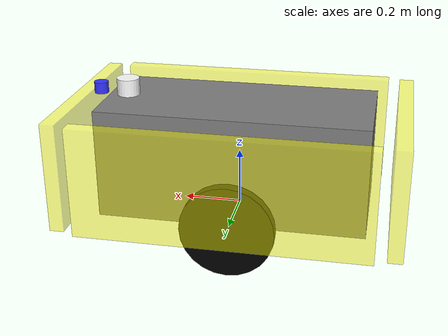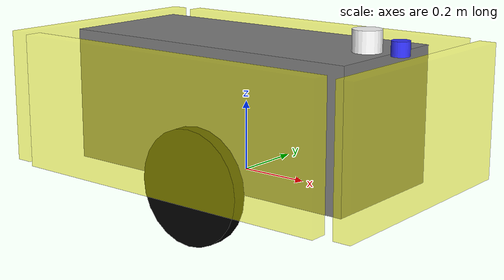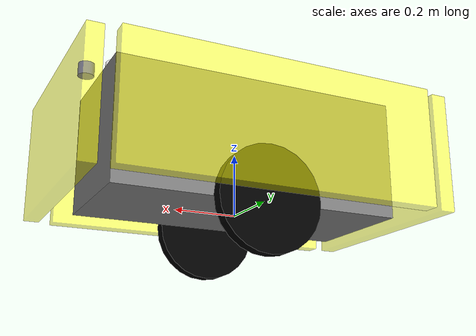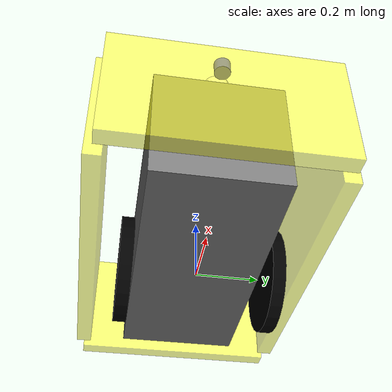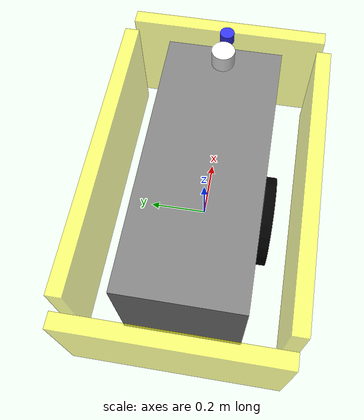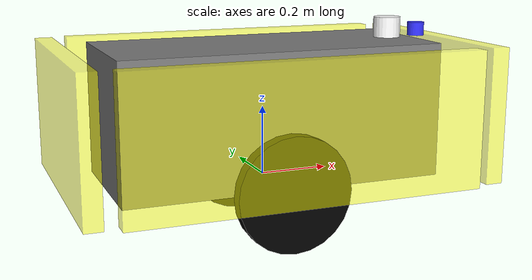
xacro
<?xml version="1.0"?>
<robot xmlns:xacro="http://www.ros.org/wiki/xacro"  name="robot">

    <xacro:include filename ="robot_core.xacro"/>
    <xacro:include filename="gazebo_control.xacro"/>
    <xacro:include filename="lidar.xacro"/>
</robot>

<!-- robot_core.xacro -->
<robot xmlns:xacro="http://www.ros.org//wiki/xacro">
    <xacro:include filename="inertial_macros.xacro"/>
    <material name ="white">
        <color rgba ="1 1 1 1"/>
    </material>

    <material name ="orange">
        <color rgba ="0.49 0.49 0.49 1"/>
    </material>
    <material name ="yellow">
        <color rgba ="1 1 0 0.5"/>
    </material>
    <material name ="blue">
        <color rgba ="0.2 0.2 1 1"/>
    </material>

    <material name ="black">
        <color rgba ="0 0 0 1"/>
    </material>

    <material name ="red">
        <color rgba ="1 0 0 1"/>
    </material>

    <xacro:property name="chassis_length" value="0.93"/>
    <xacro:property name="chassis_width" value="0.40"/>
    <xacro:property name="chassis_height" value="0.385"/>
    <xacro:property name="chassis_mass" value="10.0"/>
    <xacro:property name="wheel_radius" value="0.165"/>
    <xacro:property name="wheel_thickness" value="0.04"/>
    <xacro:property name="wheel_mass" value="1.0"/>
    <xacro:property name="wheel_offset_x" value="0.46"/>
    <xacro:property name="caster_wheel_radius" value="0.04"/>
    <xacro:property name="caster_wheel_mass" value="0.1"/>
    <xacro:property name="caster_wheel_offset_x" value="0.37"/>
    <xacro:property name="support_radius" value="0.04"/>
    <xacro:property name="support_length" value="0.25"/>
    <xacro:property name="support_x" value="0.04"/>
    <xacro:property name="support_mass" value="0.2"/>
    <xacro:property name="friction_coefficient_castor" value="0.0001"/>
    <xacro:property name="caster_wheel_z" value="${support_length/2}"/>

    <!-- BASE_FOOTPRINT LINK -->

    <joint name="base_footprint_joint" type="fixed">
        <parent link="base_link"/>
        <child link="base_footprint"/>
        <origin xyz="0 0 0" rpy="0 0 0"/>
    </joint>

    <link name="base_footprint">
    </link>

        <!-- BASE LINK -->
    <link name ="base_link">
    </link>
        <!-- CHASSIS LINK -->
    <joint name ="chassis_joint" type="fixed">
          <parent link="base_link"/>
          <child link="chassis"/>
          <origin xyz ="0 0 0"/>
    </joint>

    <link name ="chassis">
        <visual>
            <origin xyz ="0 0 ${chassis_height/2}"/>
            <geometry>
                <box size ="${chassis_length} ${chassis_width} ${chassis_height}"/>
            </geometry>
            <material name ="orange"/>
        </visual>
        <collision>
            <origin xyz ="0 0 ${chassis_height/2}"/>
            <geometry>
                <box size ="${chassis_length} ${chassis_width} ${chassis_height}"/>
            </geometry>
        </collision>
        <xacro:inertial_box mass="${chassis_mass}" x="${chassis_length}" y="${chassis_width}" z="${chassis_height}">
            <origin xyz="0 0 ${chassis_height}" rpy ="0 0 0"/>
        </xacro:inertial_box>
    </link>
    <gazebo reference ="chassis">
        <material> Gazebo/Grey</material>
    </gazebo>

            <!-- front Bumper -->
    <joint name="front_bumper_joint" type="fixed">
        <parent link="chassis"/>
        <child link="front_bumper"/>
        <origin xyz="${chassis_length/2 + 0.20/2} 0 0"/>
    </joint>

    <link name="front_bumper">

        <visual>
            <origin xyz ="0 0 0.1925"/>
            <geometry>
                <box size="0.05
                        0.69
                        0.385"/>
            </geometry>
            <material name="yellow"/>
        </visual>

        <collision>
            <origin xyz ="0 0 0.1925"/>
            <geometry>
                <box size="0.05
                        0.69
                        0.385"/>
            </geometry>
        </collision>

    </link>

            <!-- Back Bumper -->
    <joint name="back_bumper_joint" type="fixed">
        <parent link="chassis"/>
        <child link="back_bumper"/>
        <origin xyz="${-chassis_length/2 - 0.20/2} 0 0"/>
    </joint>

    <link name="back_bumper">

        <visual>
            <origin xyz ="0 0 0.1925"/>
            <geometry>
                <box size="0.05
                        0.69
                        0.385"/>
            </geometry>
            <material name="yellow"/>
        </visual>

        <collision>
            <origin xyz ="0 0 0.1925"/>
            <geometry>
                <box size="0.05
                        0.69
                        0.385"/>
            </geometry>
        </collision>

    </link>

            <!-- left Bumper -->
    <joint name="left_bumper_joint" type="fixed">
        <parent link="chassis"/>
        <child link="left_bumper"/>
        <origin xyz="0 ${chassis_width/2 + 0.29/2} 0"/>
    </joint>

    <link name="left_bumper">

        <visual>
            <origin xyz ="0 0 0.1925"/>
            <geometry>
                <box size="1
                        0.05
                        0.385"/>
            </geometry>
            <material name="yellow"/>
        </visual>

        <collision>
            <origin xyz ="0 0 0.1925"/>
            <geometry>
                <box size="1
                        0.05
                        0.385"/>
            </geometry>
        </collision>

    </link>

    <!-- RIght Bumper -->
    <joint name="right_bumper_joint" type="fixed">
        <parent link="chassis"/>
        <child link="right_bumper"/>
        <origin xyz="0 ${-chassis_width/2 - 0.29/2} 0"/>
    </joint>

    <link name="right_bumper">

        <visual>
            <origin xyz ="0 0 0.1925"/>
            <geometry>
                <box size="1
                        0.05
                        0.385"/>
            </geometry>
            <material name="yellow"/>
        </visual>

        <collision>
            <origin xyz ="0 0 0.1925"/>
            <geometry>
                <box size="1
                        0.05
                        0.385"/>
            </geometry>
        </collision>

    </link>

            <!-- LEFT WHEEL LINK -->
    <joint name ="left_wheel_joint" type ="continuous">
        <parent link="chassis"/>
        <child link ="left_wheel"/>
        <origin xyz ="0 ${wheel_offset_x/2} 0" rpy="-${pi/2} 0 0"/>
        <axis xyz ="0 0 1"/>
    </joint>

    <link name ="left_wheel">
        <visual>
            <origin xyz ="0 -0.0 0"/>
            <geometry>
                <cylinder radius="${wheel_radius}" length ="${wheel_thickness}"/>   ##
            </geometry>
            <material name ="black"/>
        </visual>
        <collision>
            <origin xyz ="0 -0.165 0"/>
            <geometry>
                <cylinder radius="${wheel_radius}" length ="${wheel_thickness}"/>
            </geometry>
        </collision>
        <xacro:inertial_cylinder mass="${wheel_mass}" length="${wheel_thickness}" radius ="${wheel_radius}">
            <origin xyz ="0 0 0" rpy =" 0 0 0"/>
        </xacro:inertial_cylinder>
    </link>
    <gazebo reference ="left_wheel">
        <material> Gazebo/Black</material>
    </gazebo>

            <!-- RIGHT WHEEL LINK -->
    <joint name ="right_wheel_joint" type ="continuous">
        <parent link="chassis"/>
        <child link ="right_wheel"/>
        <origin xyz ="0 ${-wheel_offset_x/2} 0" rpy="-${pi/2} 0 0"/>
        <axis xyz ="0 0 1"/>
    </joint>

    <link name ="right_wheel">
        <visual>
            <origin xyz ="0 -0.0 0"/>
            <geometry>
                <cylinder radius="${wheel_radius}" length ="${wheel_thickness}"/>
            </geometry>
            <material name ="black"/>
        </visual>
        <collision>
            <origin xyz ="0 -0.165 0"/>
            <geometry>
                <cylinder radius="${wheel_radius}" length ="${wheel_thickness}"/>
            </geometry>
        </collision>
        <xacro:inertial_cylinder mass="${wheel_mass}" length="${wheel_thickness}" radius ="${wheel_radius}">
            <origin xyz ="0 0 0" rpy =" 0 0 0"/>
        </xacro:inertial_cylinder>
    </link>
    <gazebo reference ="right_wheel">
        <material> Gazebo/Black</material>
    </gazebo>

    <!-- GPS SENSOR LINK -->
    <joint name="gps_joint" type="fixed">
        <parent link="chassis"/>
        <child link="gps_link"/>
        <!-- Mounted near the front/center, clear of obstacles -->
        <origin xyz="0.40 0.0 ${chassis_height+0.03}" rpy="0 0 0"/>
    </joint>

    <link name="gps_link">
        <visual>
            <geometry>
                <cylinder radius="0.04" length="0.06"/> <!-- Standard puck style visual -->
            </geometry>
            <material name="white"/>
        </visual>
    </link>

</robot>

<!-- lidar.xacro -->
<robot xmlns:xacro="http://www.ros.org/wiki/xacro" >

    <xacro:property name="Lidar_radius" value="0.025"/>
    <xacro:property name="Lidar_thickness" value="0.04"/>
    <xacro:property name="Lidar_mass" value="1.0"/>

    <joint name="laser_joint" type="fixed">
        <parent link="base_link"/>
        <child link="laser"/>
        <origin xyz="0.50 0 ${chassis_height+Lidar_thickness/2}" rpy="0 0 3.14159"/>
    </joint>
    <link name="laser">
        <visual>
            <geometry>
                <cylinder radius="${Lidar_radius}" length="${Lidar_thickness}"/>
            </geometry>
            <material name="blue"/>
        </visual>
        <collision>
            <geometry>
                <cylinder radius="${Lidar_radius}" length="${Lidar_thickness}"/>
            </geometry>
        </collision>
        <xacro:inertial_cylinder mass="${Lidar_mass}" length="${Lidar_thickness}" radius="${Lidar_radius}">
            <origin xyz ="0 0 0" rpy =" 0 0 0"/>
        </xacro:inertial_cylinder>
    </link>
    <gazebo reference="laser">
        <material>Gazebo/Blue</material>
        <sensor name ="laser" type ="ray">
            <pose> 0 0 0 0 0 0</pose>
            <visualize> true</visualize>_
            <update_rate>10</update_rate>
            <ray>
                <scan>
                    <horizontal>
                        <samples>360</samples>
                        <resolution>1</resolution>
                        <min_angle>-3.14</min_angle>
                        <max_angle>3.14</max_angle>
                    </horizontal>
                </scan>
                <range>
                    <min>0.3</min>
                    <max>12</max>
                    <resolution>0.01</resolution>
                </range>
            </ray>
            <plugin name ="laser_controller" filename="libgazebo_ros_ray_sensor.so">
                <ros>
                    <argument>~/out:=scan</argument>
                </ros>
                <output_type>sensor_msgs/LaserScan</output_type>
                <frame_name>laser_frame</frame_name>
            </plugin>
        </sensor>
    </gazebo>
</robot>
